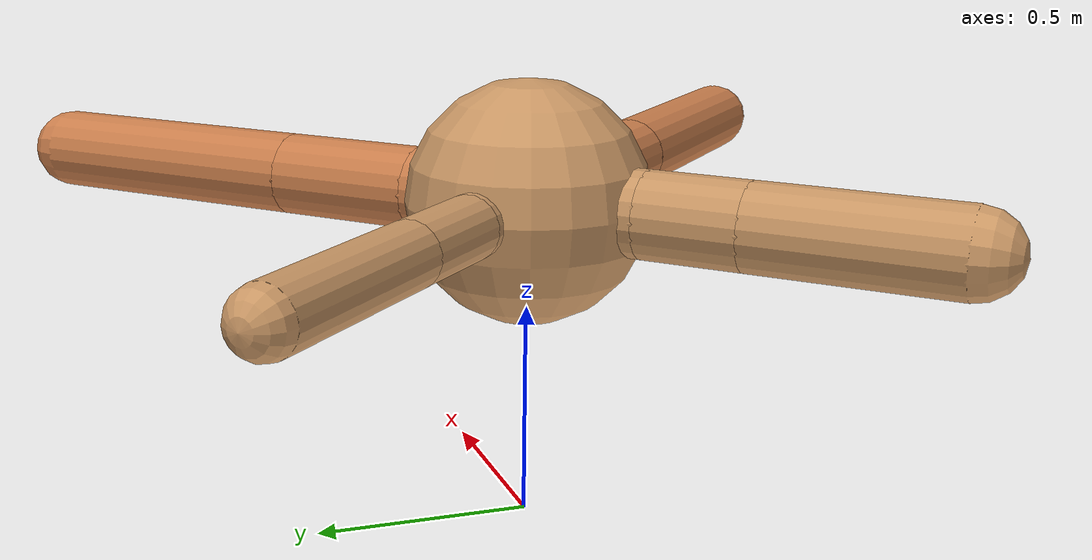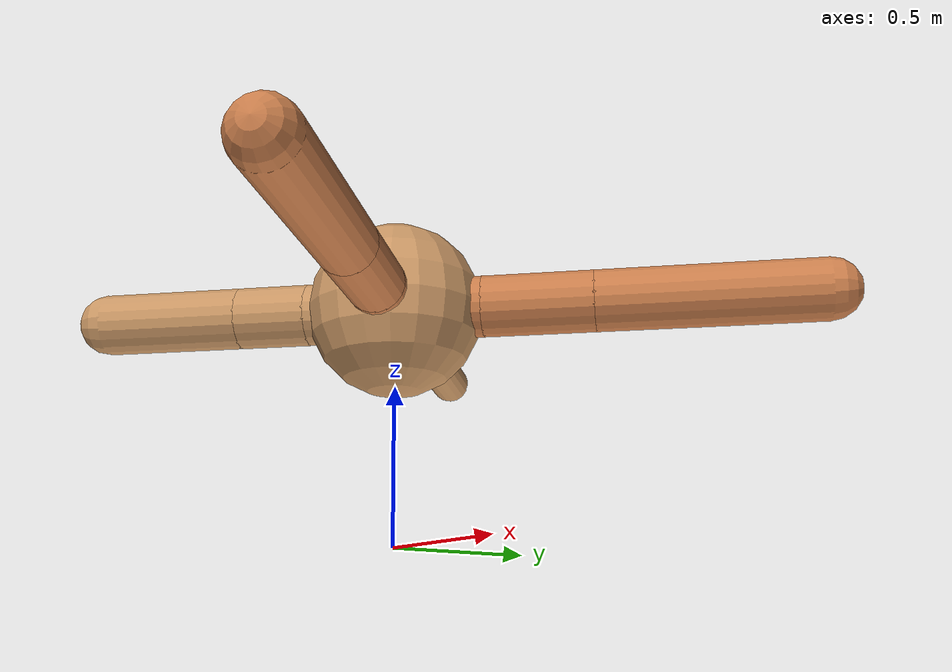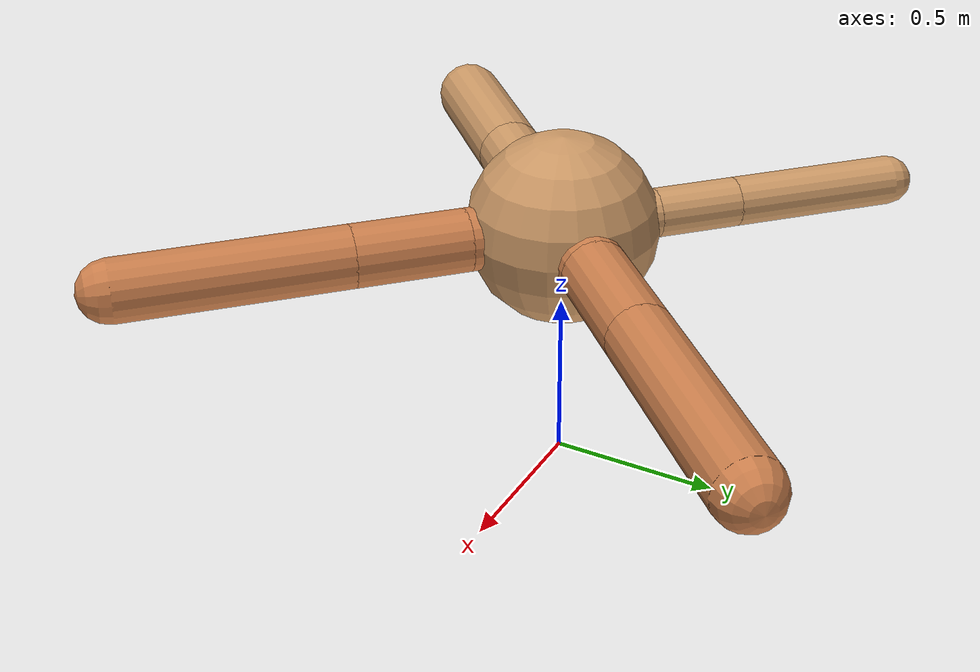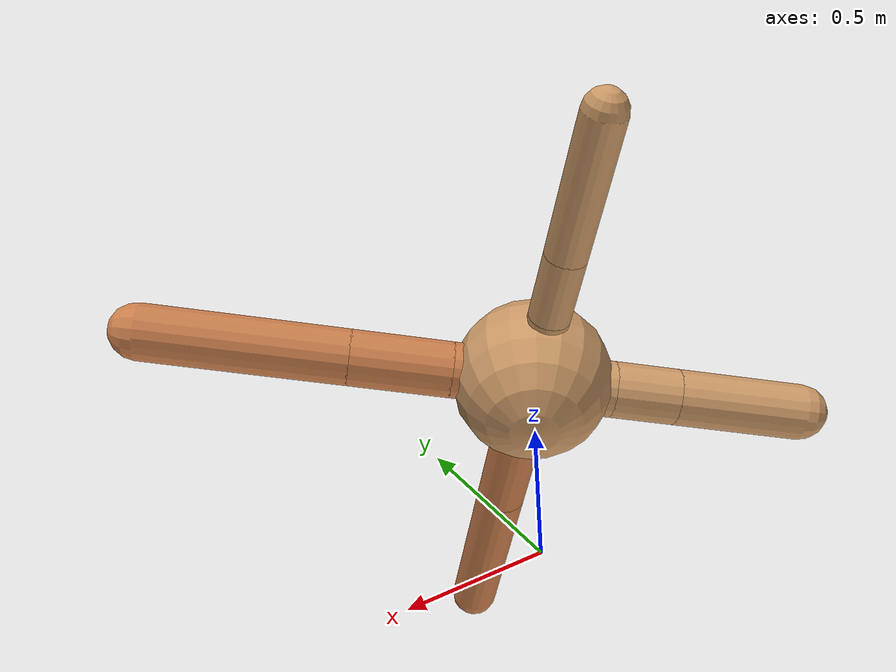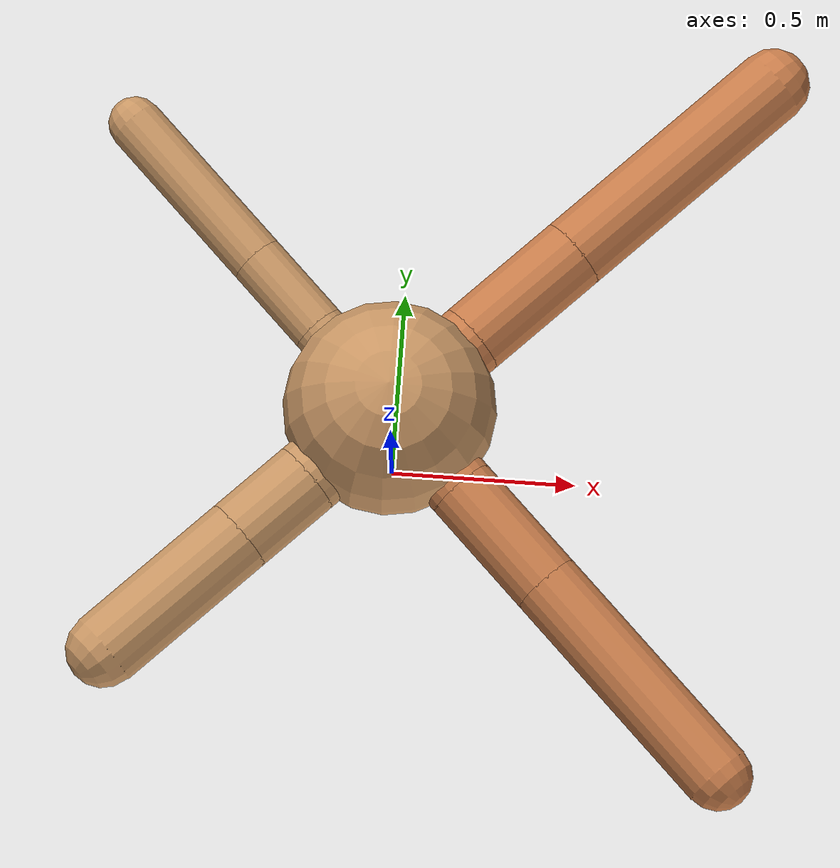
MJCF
<?xml version="1.0" ?>
<mujoco model="ant">

	<compiler angle="degree" coordinate="local" inertiafromgeom="true"/>

	<option integrator="RK4" timestep="0.01"/>

	<custom>

		<numeric data="0.0 0.0 0.55 1.0 0.0 0.0 0.0 0.0 1.0 0.0 -1.0 0.0 -1.0 0.0 1.0" name="init_qpos"/>

	</custom>

	<default>

		<joint armature="1" damping="1" limited="true"/>

		<geom conaffinity="0" condim="3" density="5.0" friction="1.5 0.1 0.1" margin="0.01" rgba="0.8 0.6 0.4 1"/>

	</default>

	<worldbody>

		<body name="torso" pos="0 0 0.75">

			<geom name="torso_geom" pos="0 0 0" size="0.2785554955197565" type="sphere"/>

			<!--joint armature="0" damping="0" limited="false" margin="0.01" name="root" pos="0 0 0" type="free"/-->

			<body name="front_left_leg" pos="0 0 0">

				<geom fromto="0 0 0 0.2 0.2 0" name="aux_1_geom" size="0.09756307676858812" type="capsule" rgba=".8 .5 .3 1"/>

				<body name="aux_1" pos="0.2 0.2 0">

					<joint axis="0 0 1" name="hip_1" pos="0.0 0.0 0.0" range="-40 40" type="hinge"/>

					<geom fromto="0 0 0 0.2475330947004989 0.2475330947004989 0" name="left_leg_geom" size="0.09756307676858812" type="capsule" rgba=".8 .5 .3 1"/>

					<body pos="0.2475330947004989 0.2475330947004989 0" name="front_left_foot">

						<joint axis="-1 1 0" name="ankle_1" pos="0.0 0.0 0.0" range="30 100" type="hinge"/>

						<geom fromto="0 0 0 0.4950661894009978 0.4950661894009978 0" name="left_ankle_geom" size="0.09756307676858812" type="capsule" rgba=".8 .5 .3 1"/>

					</body>

				</body>

			</body>

			<body name="front_right_leg" pos="0 0 0">

				<geom fromto="0 0 0 -0.2 0.2 0" name="aux_2_geom" size="0.07162448576833691" type="capsule"/>

				<body name="aux_2" pos="-0.2 0.2 0">

					<joint axis="0 0 1" name="hip_2" pos="0.0 0.0 0.0" range="-40 40" type="hinge"/>

					<geom fromto="0 0 0 -0.17366581417293614 0.17366581417293614 0" name="right_leg_geom" size="0.07162448576833691" type="capsule"/>

					<body pos="-0.17366581417293614 0.17366581417293614 0" name="front_right_foot">

						<joint axis="1 1 0" name="ankle_2" pos="0.0 0.0 0.0" range="-100 -30" type="hinge"/>

						<geom fromto="0 0 0 -0.3473316283458723 0.3473316283458723 0" name="right_ankle_geom" size="0.07162448576833691" type="capsule"/>

					</body>

				</body>

			</body>

			<body name="left_back_leg" pos="0 0 0">

				<geom fromto="0 0 0 -0.2 -0.2 0" name="aux_3_geom" size="0.0993052268935562" type="capsule"/>

				<body name="aux_3" pos="-0.2 -0.2 0">

					<joint axis="0 0 1" name="hip_3" pos="0.0 0.0 0.0" range="-40 40" type="hinge"/>

					<geom fromto="0 0 0 -0.16212914118724275 -0.16212914118724275 0" name="back_leg_geom" size="0.0993052268935562" type="capsule"/>

					<body pos="-0.16212914118724275 -0.16212914118724275 0" name="left_back_foot">

						<joint axis="-1 1 0" name="ankle_3" pos="0.0 0.0 0.0" range="-100 -30" type="hinge"/>

						<geom fromto="0 0 0 -0.3242582823744855 -0.3242582823744855 0" name="third_ankle_geom" size="0.0993052268935562" type="capsule"/>

					</body>

				</body>

			</body>

			<body name="right_back_leg" pos="0 0 0">

				<geom fromto="0 0 0 0.2 -0.2 0" name="aux_4_geom" size="0.0907516412576474" type="capsule" rgba=".8 .5 .3 1"/>

				<body name="aux_4" pos="0.2 -0.2 0">

					<joint axis="0 0 1" name="hip_4" pos="0.0 0.0 0.0" range="-40 40" type="hinge"/>

					<geom fromto="0 0 0 0.23488688964453508 -0.23488688964453508 0" name="rightback_leg_geom" size="0.0907516412576474" type="capsule" rgba=".8 .5 .3 1"/>

					<body pos="0.23488688964453508 -0.23488688964453508 0" name="right_back_foot">

						<joint axis="1 1 0" name="ankle_4" pos="0.0 0.0 0.0" range="30 100" type="hinge"/>

						<geom fromto="0 0 0 0.46977377928907016 -0.46977377928907016 0" name="fourth_ankle_geom" size="0.0907516412576474" type="capsule" rgba=".8 .5 .3 1"/>

					</body>

				</body>

			</body>

		</body>

	</worldbody>

	<actuator>

		<motor ctrllimited="true" ctrlrange="-1.0 1.0" joint="hip_4" gear="150"/>

		<motor ctrllimited="true" ctrlrange="-1.0 1.0" joint="ankle_4" gear="150"/>

		<motor ctrllimited="true" ctrlrange="-1.0 1.0" joint="hip_1" gear="150"/>

		<motor ctrllimited="true" ctrlrange="-1.0 1.0" joint="ankle_1" gear="150"/>

		<motor ctrllimited="true" ctrlrange="-1.0 1.0" joint="hip_2" gear="150"/>

		<motor ctrllimited="true" ctrlrange="-1.0 1.0" joint="ankle_2" gear="150"/>

		<motor ctrllimited="true" ctrlrange="-1.0 1.0" joint="hip_3" gear="150"/>

		<motor ctrllimited="true" ctrlrange="-1.0 1.0" joint="ankle_3" gear="150"/>

	</actuator>

</mujoco>
